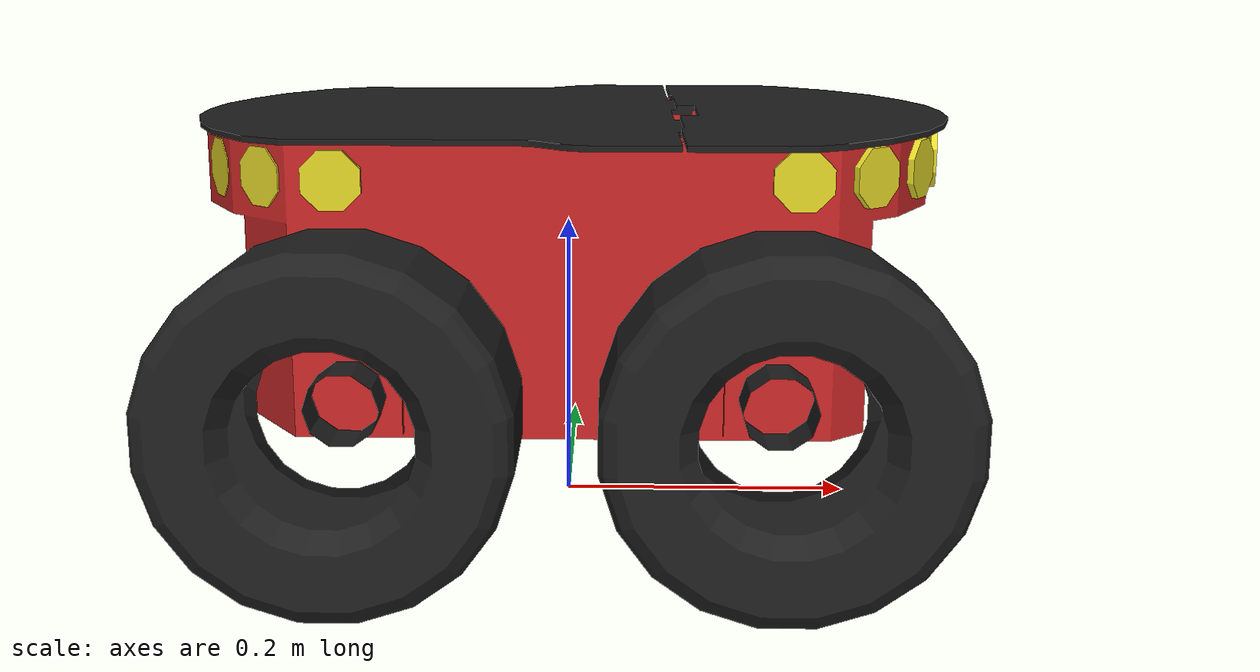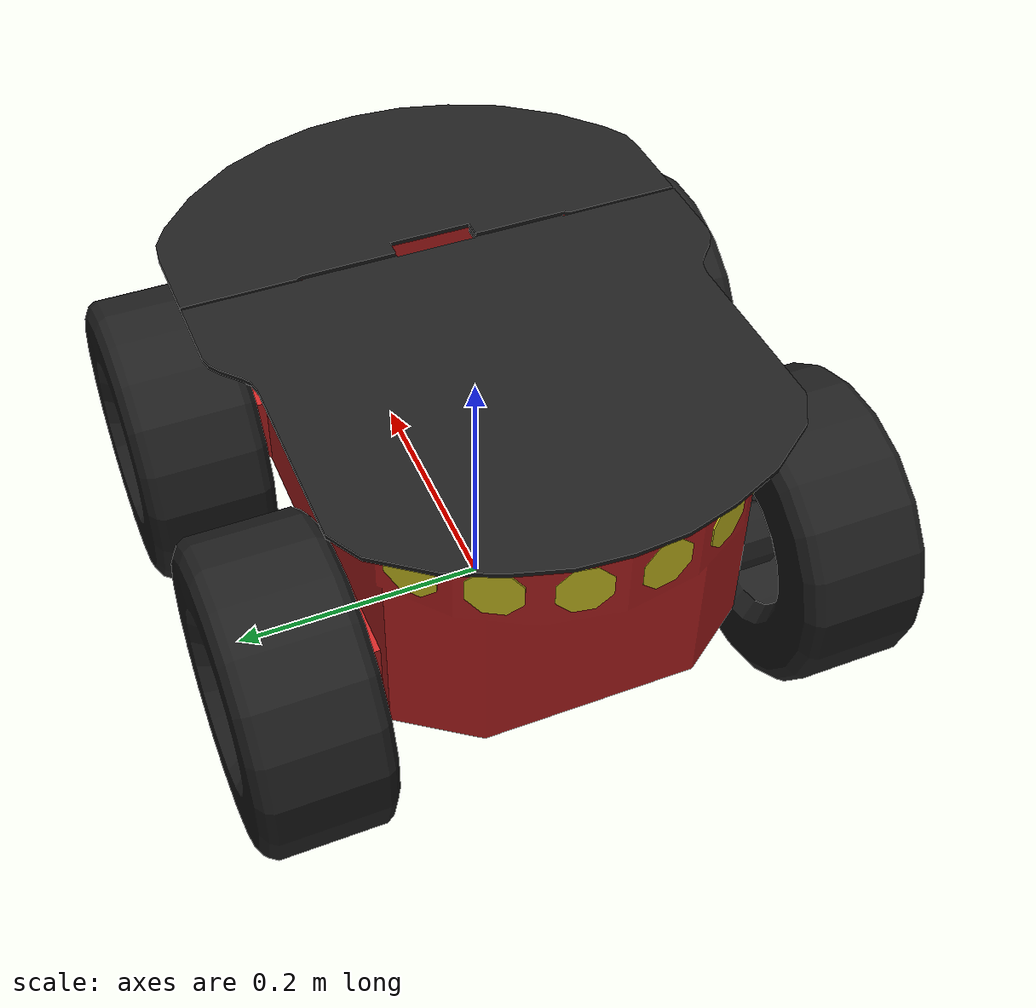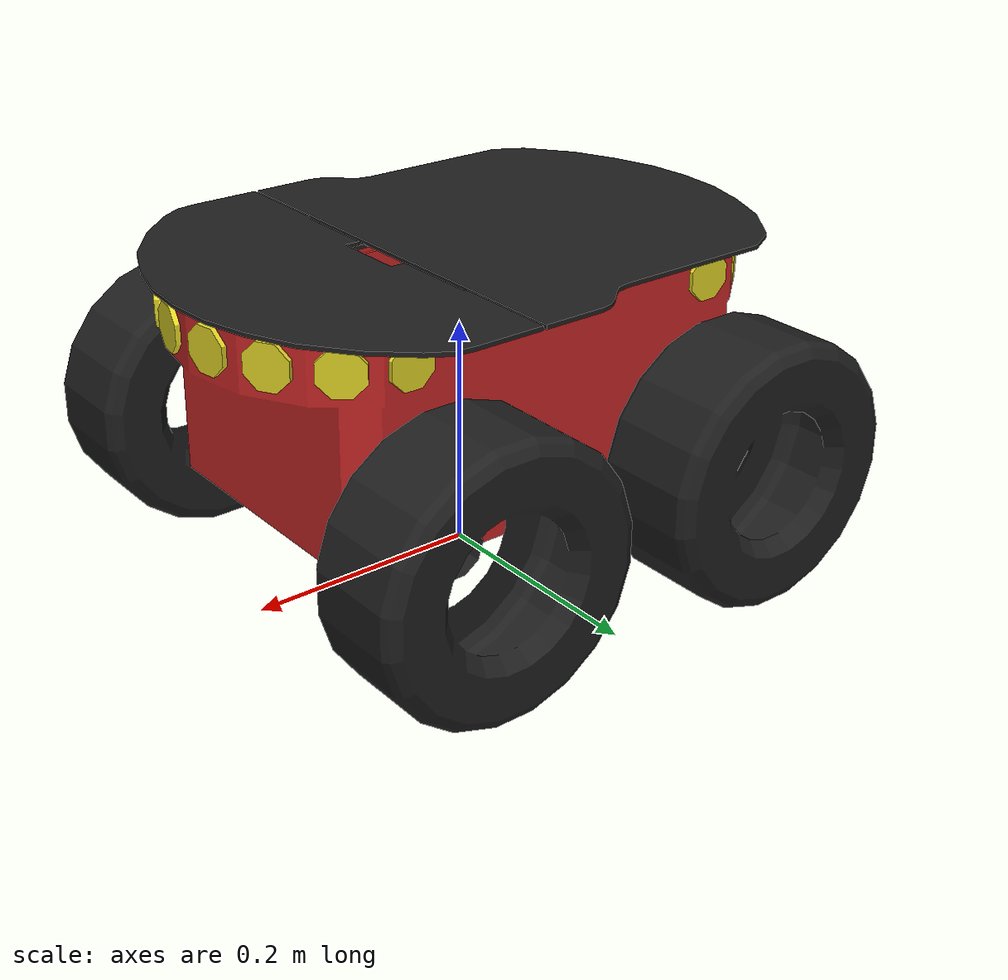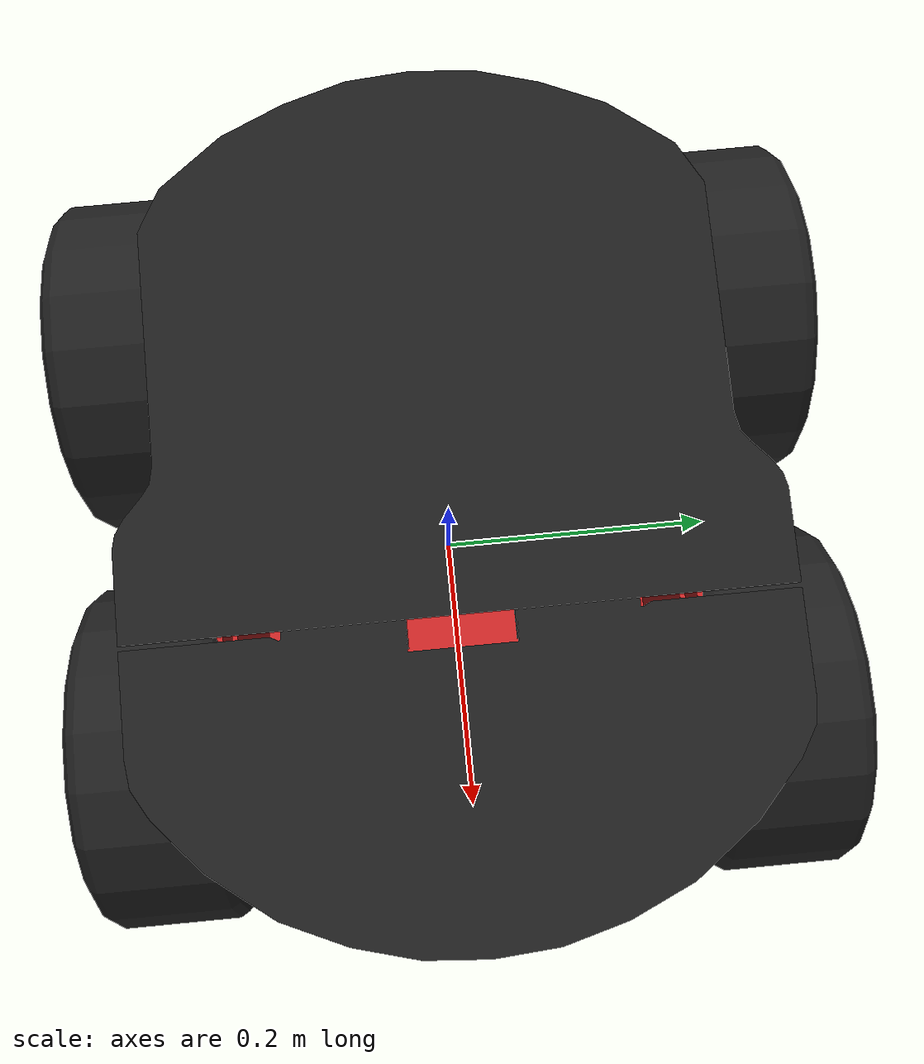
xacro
<?xml version="1.0"?>
<robot xmlns:xacro="http://www.ros.org/wiki/xacro">

<!-- |                                          DUMY LINK                              | -->

 <!-- Parent with no inertia -->

<!-- |                                          BASE FOOTPRINT                         | -->

<joint name="base_footprint_joint" type="fixed">
        <parent link="base_link"/>
        <child link="base_footprint"/>
        <origin xyz="0 0 0" rpy="0 0 0"/>
    </joint>

<link name="base_footprint">

</link>

<!-- |                                          CHASIS                                 | -->

<link name="base_link">

    <visual>
      <geometry>
        <mesh filename="file://$(find higgs2)/model/meshes/chasis.stl"/>
      </geometry>
      <origin rpy="0 0 0" xyz="0 0 0.177"/>
      <material name="red"/>
    </visual>

    <collision>
      <geometry>
        <box size="0.5 0.38 0.19"/>
      </geometry>
      <origin rpy="0 0 0" xyz="0 0 0.177"/>
    </collision>

    <inertial>
      <mass value="17"/>
      <!-- 14kg con una bateria mas otras 2 de 1,5kg cada una = 17kg-->
      <inertia ixx="0.256" ixy="0.0" ixz="0.0" iyy="0.405" iyz="0.0" izz="0.559"/>
      <origin xyz=" 0 0 0.177"/>
    </inertial>

 </link>

<!-- |                                          CUBIERTA SUPERIOR                      | -->

<link name="cubierta_link">

    <visual>
      <geometry>
        <mesh filename="file://$(find higgs2)/model/meshes/cubierta.stl"/>
        <origin rpy="0 0 0" xyz="0 0 0"/>
      </geometry>

      <material name="black"/>
    </visual>

    <collision>
      <geometry>
        <box size="0.51 0.38 0.03"/>
        <origin rpy="0 0 0" xyz="0 0 0"/>
      </geometry>

    </collision>

    <inertial>
      <mass value="0.1"/>
      <!--Tomo un valor aproximado(Puede considerarse simbolico)-->
      <origin xyz="-0.025 0 -0.223"/>
      <inertia ixx="0.001" ixy="0.0" ixz="0.0" iyy="0.002" iyz="0.0" izz="0.003"/>

    </inertial>

 </link>

<joint name="base_cubierta" type="fixed">
    <origin  xyz="0.003 0 0.274" rpy="0 0 0" />
    <parent link="base_link"/>
    <child link="cubierta_link"/>
  </joint>

<!-- |                                          SONAR SENSORS                          | -->

<link name="Sonar_delantero_link">

    <visual>
      <geometry>
        <mesh filename="file://$(find higgs2)/model/meshes/sonar_delantero.stl"/>
      </geometry>
      <origin rpy="0 0 0" xyz="0 0 0"/>
      <material name="yellow"/>
    </visual>

    <collision>
      <geometry>
        <mesh filename="file://$(find higgs2)/model/meshes/sonar_delantero.stl"/>
        <sphere radius="0.01"/>
      </geometry>
      <origin rpy="0 0 0" xyz="0 0 0"/>
    </collision>

    <inertial>
      <mass value="0.1"/>
      <!--Tomo un valor aproximado(Puede considerarse simbolico)-->
      <inertia ixx="1e-6" ixy="0" ixz="0" iyy="1e-6" iyz="0" izz="1e-6" />
      <!--Matriz de inercias = 1 debido a su bajo efecto-->
    </inertial>

</link>

<link name="Sonar_trasero_link">

    <visual>
      <geometry>
        <mesh filename="file://$(find higgs2)/model/meshes/sonar_trasero.stl"/>
      </geometry>
      <origin rpy="0 0 0" xyz="0 0 0"/>
      <material name="yellow"/>
    </visual>

    <collision>
      <geometry>
        <mesh filename="file://$(find higgs2)/model/meshes/sonar_trasero.stl"/>
      </geometry>
      <origin rpy="0 0 0" xyz="0 0 0"/>
    </collision>

    <inertial>
      <mass value="0.1"/>
      <!--Tomo un valor aproximado(Puede considerarse simbolico)-->
      <inertia ixx="1e-6" ixy="0" ixz="0" iyy="1e-6" iyz="0" izz="1e-6" />
      <!--Matriz de inercias = 1 debido a su bajo efecto-->
    </inertial>

</link>

<joint name="base_sonar_frontal_joint" type="fixed">
    <origin rpy="0 0 0" xyz="0.193 0 0.25"/>
    <parent link="base_link"/>
    <child link="Sonar_delantero_link"/>
  </joint>

<joint name="base_sonar_trasero_joint" type="fixed">
    <origin rpy="0 0 0" xyz="-0.187 0 0.247"/>
    <parent link="base_link"/>
    <child link="Sonar_trasero_link"/>
  </joint>

<!-- |                                          WHEELS AND JOINTS                      | -->

<!-- |                                          RUEDA IZQ DEL                          | -->
<link name="Eje_izq_delantero_link">
    <visual>
      <origin rpy="0 0 0" xyz="0 0 0"/>
      <geometry>
        <mesh filename="file://$(find higgs2)/model/meshes/eje.stl"/>
      </geometry>
      <material name="black"/>
    </visual>

    <collision>
      <origin rpy="0 0 0" xyz="0 0 0"/>
      <geometry>
        <mesh filename="file://$(find higgs2)/model/meshes/eje.stl"/>
      </geometry>
    </collision>

    <inertial>
      <mass value="0.2"/>
      <origin xyz="0 0 0"/>
      <inertia ixx="1e-6" ixy="0" ixz="0" iyy="1e-6" iyz="0" izz="1e-6" />
    </inertial>

  </link>

<joint name="base_eje_izq_delantero_joint" type="fixed">
    <origin rpy="0 0 0" xyz="0.135 0.156 0.111"/>
    <parent link="base_link"/>
    <child link="Eje_izq_delantero_link"/>
</joint>

<link name="Rueda_izq_delantera_link">
    <visual>
      <origin rpy="0 0 0" xyz="0 0 0"/>
      <geometry>
        <mesh filename="file://$(find higgs2)/model/meshes/rueda.stl"/>
      </geometry>
      <material name="black"/>
    </visual>

    <collision>
      <origin rpy="-1.57079635 0 0" xyz="0 0 0"/>
      <geometry>
        <sphere radius="0.111"/>
      </geometry>
    </collision>

    <inertial>
      <mass value="1.4"/>
      <origin xyz="0 0 0"/>
      <inertia ixx="0.006" ixy="0" ixz="0" iyy="0.011" iyz="0" izz="0.006"/>
    </inertial>

  </link>

<joint name="base_ruedaizqdel_joint" type="continuous">
    <axis rpy="0 0 0" xyz="0 1 0"/>
    <origin rpy="0 0 0" xyz="0 0.041 0"/>
    <parent link="Eje_izq_delantero_link"/>
    <child link="Rueda_izq_delantera_link"/>
  </joint>

<!-- |                                          RUEDA DER DEL                          | -->

<link name="Eje_der_delantero_link">
      <visual>
      <origin rpy="0 0 0" xyz="0 0 0"/>
      <geometry>
        <mesh filename="file://$(find higgs2)/model/meshes/eje.stl"/>
      </geometry>
      <material name="black"/>
    </visual>

    <collision>
      <origin rpy="0 0 0" xyz="0 0 0"/>
      <geometry>
        <mesh filename="file://$(find higgs2)/model/meshes/eje.stl"/>
      </geometry>
    </collision>

    <inertial>
      <mass value="0.2"/>
      <origin xyz="0 0 0"/>
      <inertia ixx="1e-6" ixy="0" ixz="0" iyy="1e-6" iyz="0" izz="1e-6" />
    </inertial>

  </link>

   <joint name="base_eje_der_delantero_joint" type="fixed">
    <origin rpy="0 0 0" xyz="0.135 -0.156 0.111"/>
    <parent link="base_link"/>
    <child link="Eje_der_delantero_link"/>
  </joint>

<link name="Rueda_der_delantera_link">
    <visual>
      <origin rpy="0 0 0" xyz="0 0 0"/>
      <geometry>
        <mesh filename="file://$(find higgs2)/model/meshes/rueda.stl"/>
      </geometry>
      <material name="black"/>
    </visual>

    <collision>
      <origin rpy="-1.57079635 0 0" xyz="0 0 0"/>
      <geometry>
        <sphere radius="0.111"/>
      </geometry>
    </collision>

    <inertial>
      <mass value="1.4"/>
      <inertia ixx="0.006" ixy="0" ixz="0" iyy="0.011" iyz="0" izz="0.006"/>
    </inertial>

  </link>

<joint name="base_ruedaderdel_joint" type="continuous">
    <axis xyz="0 1 0"/>
    <joint_properties damping="0.7"/>
    <origin rpy="0 0 0" xyz="0 -0.041 0"/>
    <parent link="Eje_der_delantero_link"/>
    <child link="Rueda_der_delantera_link"/>
  </joint>

<!-- |                                          RUEDA IZQ TRA                          | -->

<link name="Eje_izq_trasero_link">
      <visual>
      <origin rpy="0 0 0" xyz="0 0 0"/>
      <geometry>
        <mesh filename="file://$(find higgs2)/model/meshes/eje.stl"/>
      </geometry>
      <material name="black"/>
    </visual>

    <collision>
      <origin rpy="0 0 0" xyz="0 0 0"/>
      <geometry>
        <mesh filename="file://$(find higgs2)/model/meshes/eje.stl"/>
      </geometry>
    </collision>

    <inertial>
      <mass value="0.2"/>
      <origin xyz="0 0 0"/>
      <inertia ixx="1e-6" ixy="0" ixz="0" iyy="1e-6" iyz="0" izz="1e-6" />
    </inertial>

  </link>

   <joint name="base_eje_izq_trasero_joint" type="fixed">
    <origin rpy="0 0 0" xyz="-0.135 0.156 0.111"/>
    <parent link="base_link"/>
    <child link="Eje_izq_trasero_link"/>
  </joint>

<link name="Rueda_izq_trasera_link">
      <visual>
      <origin rpy="0 0 0" xyz="0 0 0"/>
      <geometry>
        <mesh filename="file://$(find higgs2)/model/meshes/rueda.stl"/>
      </geometry>
      <material name="black"/>
    </visual>

    <collision>
      <origin rpy="-1.57079635 0 0" xyz="0 0 0"/>
      <geometry>
        <sphere radius="0.111"/>
      </geometry>
    </collision>

    <inertial>
      <mass value="1.4"/>
      <inertia ixx="0.006" ixy="0" ixz="0" iyy="0.011" iyz="0" izz="0.006"/>
    </inertial>

  </link>

<joint name="base_ruedaizqtra_joint" type="continuous">
    <axis xyz="0 1 0"/>
    <joint_properties damping="0.7"/>
    <origin rpy="0 0 0" xyz="0 0.041 0"/>
    <parent link="Eje_izq_trasero_link"/>
    <child link="Rueda_izq_trasera_link"/>
  </joint>

<!-- |                                          RUEDA DER TRA                          | -->

<link name="Eje_der_trasero_link">
      <visual>
      <origin rpy="0 0 0" xyz="0 0 0"/>
      <geometry>
        <mesh filename="file://$(find higgs2)/model/meshes/eje.stl"/>
      </geometry>
      <material name="black"/>
    </visual>

    <collision>
      <origin rpy="0 0 0" xyz="0 0 0"/>
      <geometry>
        <mesh filename="file://$(find higgs2)/model/meshes/eje.stl"/>
      </geometry>
    </collision>

    <inertial>
      <mass value="0.2"/>
      <origin xyz="0 0 0"/>
      <inertia ixx="1e-6" ixy="0" ixz="0" iyy="1e-6" iyz="0" izz="1e-6" />
    </inertial>

  </link>

<joint name="base_eje_der_trasero_joint" type="fixed">
    <origin rpy="0 0 0" xyz="-0.135 -0.156 0.111"/>
    <parent link="base_link"/>
    <child link="Eje_der_trasero_link"/>
  </joint>

<link name="Rueda_der_trasera_link">
      <visual>
      <origin rpy="0 0 0" xyz="0 0 0"/>
      <geometry>
        <mesh filename="file://$(find higgs2)/model/meshes/rueda.stl"/>
      </geometry>
      <material name="black"/>
    </visual>

    <collision>
      <origin rpy="-1.57079635 0 0" xyz="0 0 0"/>
      <geometry>
        <sphere radius="0.111"/>
      </geometry>
    </collision>

    <inertial>
      <mass value="1.4"/>
      <inertia ixx="0.006" ixy="0" ixz="0" iyy="0.011" iyz="0" izz="0.006"/>
    </inertial>

  </link>

<joint name="base_ruedadertra_joint" type="continuous">
    <axis xyz="0 1 0"/>
    <joint_properties damping="0.7"/>
    <origin rpy="0 0 0" xyz="0 -0.041 0"/>
    <parent link="Eje_der_trasero_link"/>
    <child link="Rueda_der_trasera_link"/>
  </joint>

<!-- |                                          GAZEBO                                 | -->

<gazebo reference="base_link">
      <visual>
            <material>
                <ambient>1 0 0 1</ambient>
                <diffuse>1 0 0 1</diffuse>
                <specular>0.1 0.1 0.1 1</specular>
            </material>
      </visual>
</gazebo>

<gazebo reference="cubierta_link">
        <visual>
            <material>
                <ambient>0.1 0.1 0.1</ambient>
                <diffuse>0.1 0.1 0.1</diffuse>
                <specular>0.01 0.01 0.01 1.0 1.0</specular>
            </material>
        </visual>
</gazebo>

<gazebo reference="Sonar_delantero_link">
      <visual>
            <material>
                <ambient>0.7 0.7 0 1</ambient>
                <diffuse>0.7 0.7 0 1</diffuse>
                <specular>0 0 0 0 0</specular>
            </material>
        </visual>
</gazebo>

<gazebo reference="Sonar_trasero_link">
      <visual>
            <material>
                <ambient>0.7 0.7 0 1</ambient>
                <diffuse>0.7 0.7 0 1</diffuse>
                <specular>0 0 0 0 0</specular>
            </material>
        </visual>
</gazebo>
<gazebo reference="Eje_izq_delantero_link">
      <visual>
            <material>
                <ambient>0 0 0 1</ambient>
                <diffuse>0 0 0 1</diffuse>
                <specular>0.1 0.1 0.1 1 5.0</specular>
            </material>
        </visual>
</gazebo>
<gazebo reference="Eje_der_delantero_link">
      <visual>
            <material>
                <ambient>0 0 0 1</ambient>
                <diffuse>0 0 0 1</diffuse>
                <specular>0.1 0.1 0.1 1 5.0</specular>
            </material>
        </visual>
</gazebo>
<gazebo reference="Eje_izq_trasero_link">
      <visual>
            <material>
                <ambient>0 0 0 1</ambient>
                <diffuse>0 0 0 1</diffuse>
                <specular>0.1 0.1 0.1 1 5.0</specular>
            </material>
        </visual>
</gazebo>
<gazebo reference="Eje_der_trasero_link">
      <visual>
            <material>
                <ambient>0 0 0 1</ambient>
                <diffuse>0 0 0 1</diffuse>
                <specular>0.1 0.1 0.1 1 5.0</specular>
            </material>
        </visual>
</gazebo>
<gazebo reference="Rueda_izq_delantera_link">
        <visual>
            <material>
                <ambient>0.1 0.1 0.1</ambient>
                <diffuse>0.1 0.1 0.1</diffuse>
                <specular>0.01 0.01 0.01 1.0 1.0</specular>
            </material>
        </visual>
</gazebo>
<gazebo reference="Rueda_der_delantera_link">
        <visual>
            <material>
                <ambient>0.1 0.1 0.1</ambient>
                <diffuse>0.1 0.1 0.1</diffuse>
                <specular>0.01 0.01 0.01 1.0 1.0</specular>
            </material>
        </visual>
</gazebo>
<gazebo reference="Rueda_izq_trasera_link">
        <visual>
            <material>
                <ambient>0.1 0.1 0.1</ambient>
                <diffuse>0.1 0.1 0.1</diffuse>
                <specular>0.01 0.01 0.01 1.0 1.0</specular>
            </material>
        </visual>
</gazebo>
<gazebo reference="Rueda_der_trasera_link">
        <visual>
            <material>
                <ambient>0.1 0.1 0.1</ambient>
                <diffuse>0.1 0.1 0.1</diffuse>
                <specular>0.01 0.01 0.01 1.0 1.0</specular>
            </material>
        </visual>
</gazebo>

</robot>
